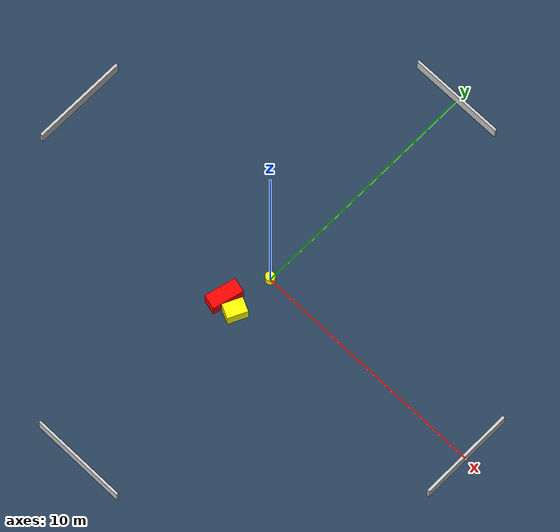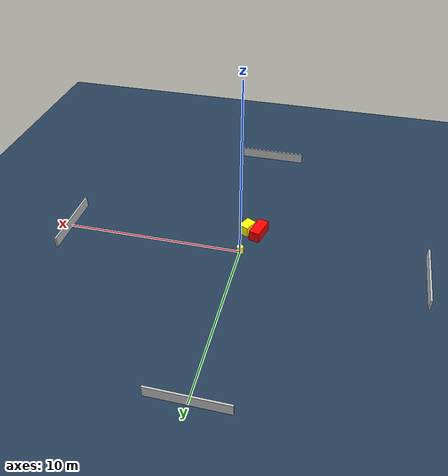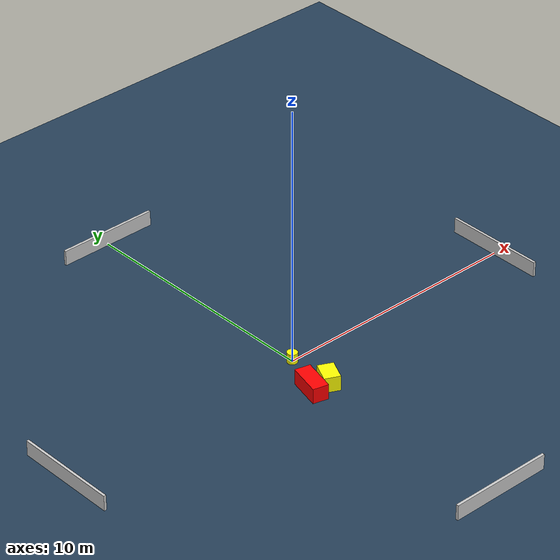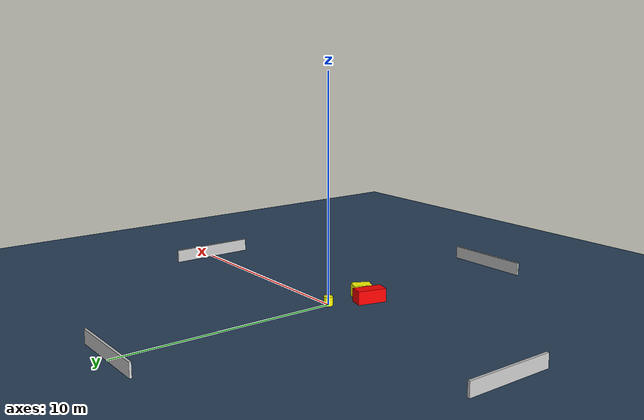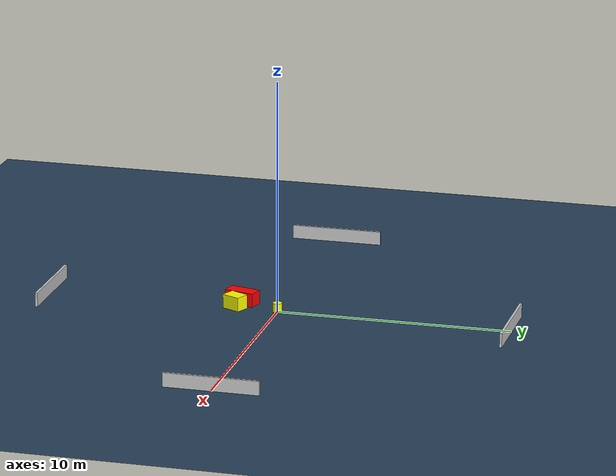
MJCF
<?xml version="1.0" ?>
<mujoco model="generated_environment">
  <option timestep="0.01" integrator="RK4" cone="elliptic"/>
  <default>
    <geom density="1"/>
  </default>
  <asset>
    <texture builtin="gradient" height="3072" name="skybox" rgb1="0.3 0.5 0.7" rgb2="0 0 0" type="skybox" width="512"/>
    <texture builtin="checker" height="300" name="groundplane" rgb1="0.2 0.3 0.4" rgb2="0.1 0.2 0.3" type="2d" width="300"/>
    <material name="groundplane" reflectance="0.2" texrepeat="5 5" texture="groundplane"/>
  </asset>
  <worldbody>
    <light dir="0 0 -1" directional="true" pos="0 0 1.5"/>
    <geom condim="3" friction="0.5 0.005 0.001" material="groundplane" name="floor" pos="0 0 0" size="0 0 0.05" type="plane"/>
    <body name="walls">
      <geom name="wall_1" condim="4" pos="-10.0 0.0 0.3" rgba="0.800000011920929 0.800000011920929 0.800000011920929 1.0" size="0.05 2.0 0.3" type="box"/>
      <geom name="wall_2" condim="4" pos="10.0 0.0 0.3" rgba="0.800000011920929 0.800000011920929 0.800000011920929 1.0" size="0.05 2.0 0.3" type="box"/>
      <geom name="wall_3" condim="4" pos="0.0 -10.0 0.3" rgba="0.800000011920929 0.800000011920929 0.800000011920929 1.0" size="2.0 0.05 0.3" type="box"/>
      <geom name="wall_4" condim="4" pos="0.0 10.0 0.3" rgba="0.800000011920929 0.800000011920929 0.800000011920929 1.0" size="2.0 0.05 0.3" type="box"/>
    </body>
    <body name="robot">
      <joint name="joint_x" type="slide" pos="0 0 0" axis="1 0 0"/>
      <joint name="joint_y" type="slide" pos="0 0 0" axis="0 1 0"/>
      <geom name="robot" type="cylinder" pos="0.0 0.0 0.2" size="0.2 0.2 0.0" mass="5.0" friction="1.0 0.005 0.0001" condim="4" rgba="1.0 1.0 0.0 1.0"/>
    </body>
    <body name="obstacle_1_movable">
      <geom name="obstacle_1_movable" condim="4" pos="-0.008839877582811346 -1.8540638505226066 0.3" euler="0 0 334.3937009982841" friction="0.0 0.005 0.001" rgba="1.0 1.0 0.0 1.0" size="0.30530965162716506 0.416962283792936 0.3" type="box" mass="0.1"/>
      <joint type="free"/>
    </body>
    <body name="obstacle_2_static">
      <geom name="obstacle_2_static" condim="4" pos="-0.6928119552715221 -1.7295377609002767 0.3" euler="0 0 165.85282475794602" friction="0.0 0.005 0.001" rgba="1.0 0.0 0.0 1.0" size="0.30569064518173666 0.6577406506006711 0.3" type="box"/>
    </body>
  </worldbody>
  <actuator>
    <motor name="actuator_x" joint="joint_x" gear="1" ctrlrange="-1 1"/>
    <motor name="actuator_y" joint="joint_y" gear="1" ctrlrange="-1 1"/>
  </actuator>
</mujoco>
